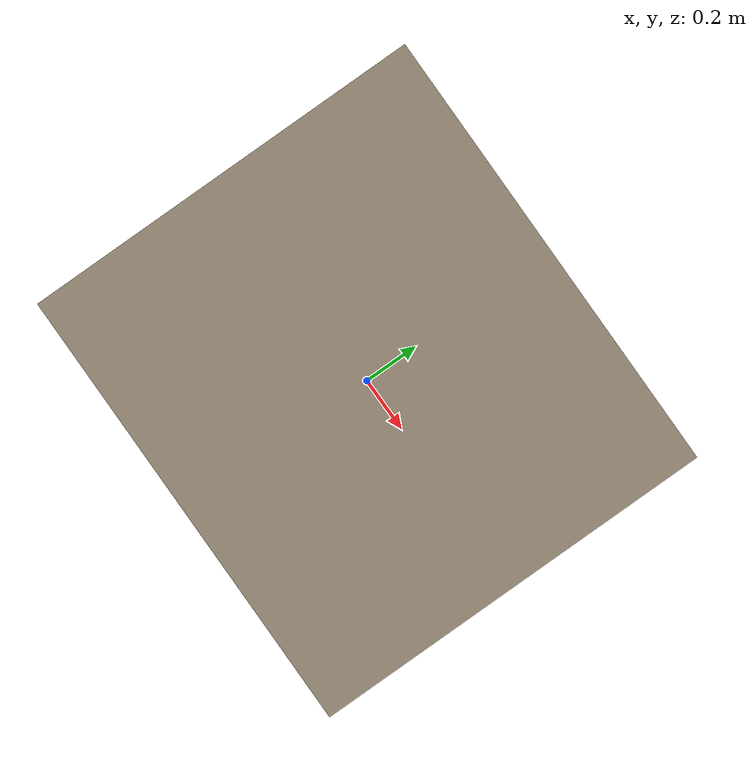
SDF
<?xml version='1.0' encoding='utf-8'?>
<sdf version="1.6">
  <model name="aws_robomaker_warehouse_ClutteringC_01">
    <static>true</static>
    <link name="link">
      <collision name="collision_1">
        <pose>0 0 0.5 0 0 0</pose>
        <geometry>
          <box>
            <size>0.9 0.8 1.2</size>
          </box>
        </geometry>
      </collision>
      <visual name="visual_1">
        <pose>0 0 0.5 0 0 0</pose>
        <geometry>
          <box>
            <size>0.9 0.8 1.2</size>
          </box>
        </geometry>
        <material>
          <ambient>0.64 0.58 0.5 1</ambient>
          <diffuse>0.64 0.58 0.5 1</diffuse>
          <specular>0.08 0.08 0.08 1</specular>
        </material>
      </visual>
    </link>
  </model>
</sdf>
